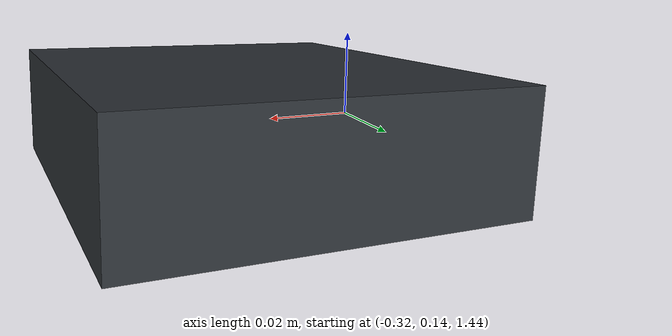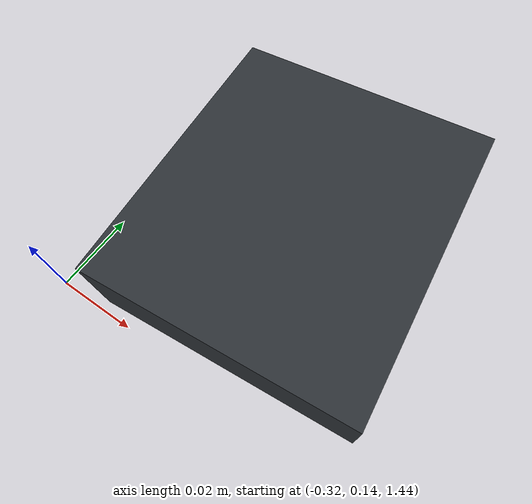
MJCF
<mujoco model="battery_holder_4aa">
  <compiler angle="radian" coordinate="local"/>

  <asset>
    <material name="battery_holder" rgba="0.18 0.20 0.22 1" specular="0.3" shininess="0.35"/>
  </asset>

  <worldbody>
    <!--
      Air spawn beside ODC (origin) and SG90 (+X). Slight tip for natural impact.
      Half-extents from ALIGN.txt: 0.03225 × 0.0354 × 0.010225 m
      → full ≈ 64.5 × 70.8 × 20.45 mm.
    -->
    <body name="battery_holder_4aa" pos="-0.28 0.18 1.45" euler="0.03 -0.025 0.08">
      <freejoint name="battery_holder_4aa_free"/>
      <!-- ASSUMPTION mass 0.110 kg; diaginertia = solid-box about COM from AABB. -->
      <inertial pos="0 0 0" mass="0.110" diaginertia="4.978272e-5 4.196915e-5 8.408483e-5"/>
      <geom name="battery_holder_4aa_box" type="box" size="0.03225 0.0354 0.010225"
            material="battery_holder" priority="1"
            solref="0.012 0.25" solimp="0.9 0.95 0.001 0.5 2"/>
    </body>
  </worldbody>
</mujoco>
